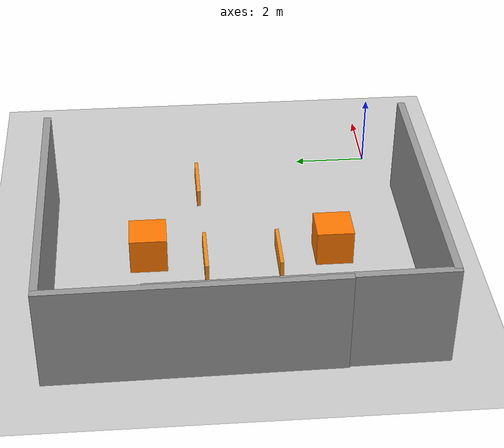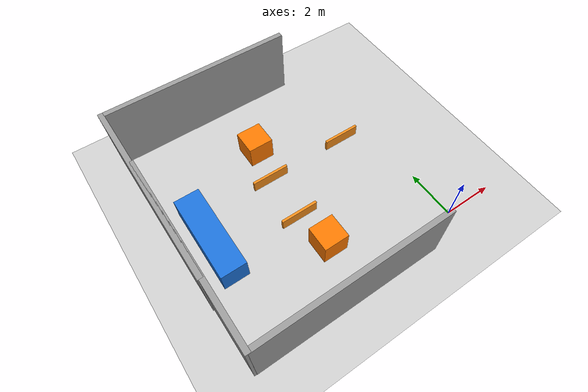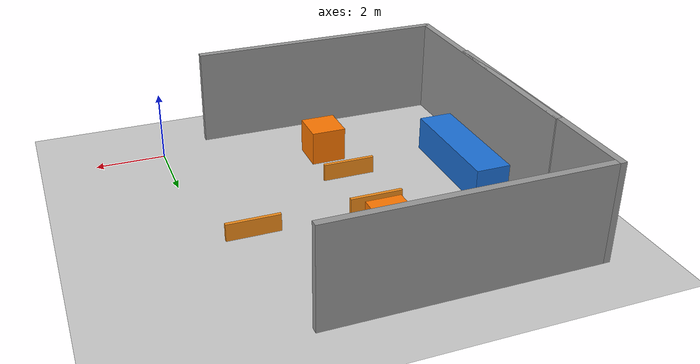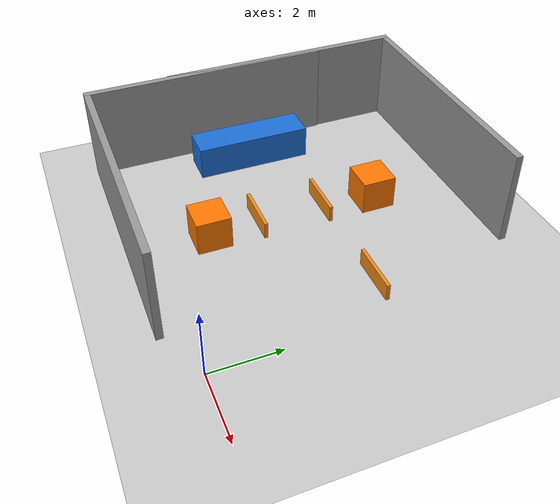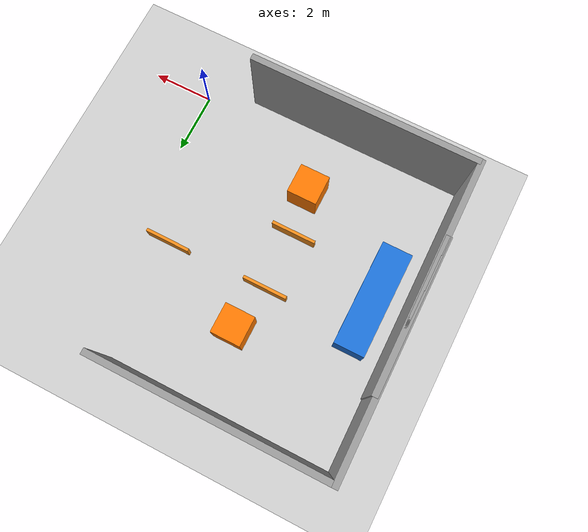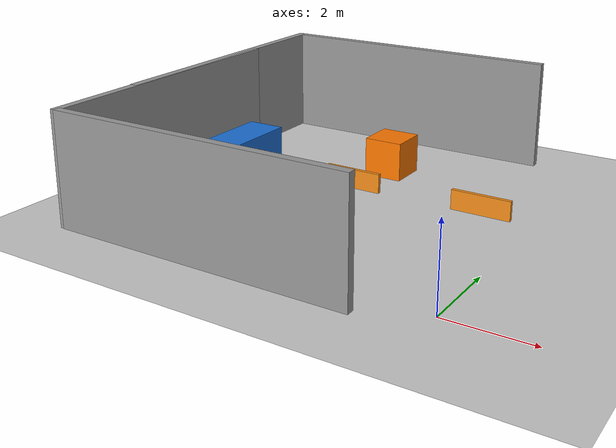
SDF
<sdf version="1.7">
 <world name="default">
  <model name="ground_plane">
   <static>1</static>
   <link name="link">
    <collision name="collision">
     <geometry><plane><normal>0 0 1</normal><size>100 100</size></plane></geometry>
     <surface><friction><ode><mu>100</mu><mu2>50</mu2></ode></friction></surface>
    </collision>
    <visual name="visual">
     <cast_shadows>0</cast_shadows>
     <geometry><plane><normal>0 0 1</normal><size>100 100</size></plane></geometry>
     <material>
      <script><uri>file://media/materials/scripts/gazebo.material</uri><name>Gazebo/Grey</name></script>
     </material>
    </visual>
   </link>
  </model>
  <model name="grey_wall">
   <static>1</static>
   <link name="link">
    <pose>0 0 1.4 0 -0 0</pose>
    <collision name="collision"><geometry><box><size>7.5 0.2 2.8</size></box></geometry></collision>
    <visual name="visual">
     <cast_shadows>0</cast_shadows>
     <geometry><box><size>7.5 0.2 2.8</size></box></geometry>
     <material>
      <script>
       <uri>model://grey_wall/materials/scripts</uri>
       <uri>model://grey_wall/materials/textures</uri>
       <name>vrc/grey_wall</name>
      </script>
     </material>
    </visual>
   </link>
   <pose>-5.22527 9.15073 0 0 -0 0</pose>
  </model>
  <model name="grey_wall_clone_0">
   <static>1</static>
   <link name="link">
    <pose>0 0 1.4 0 -0 0</pose>
    <collision name="collision"><geometry><box><size>7.5 0.2 2.8</size></box></geometry></collision>
    <visual name="visual">
     <cast_shadows>0</cast_shadows>
     <geometry><box><size>7.5 0.2 2.8</size></box></geometry>
     <material>
      <script>
       <uri>model://grey_wall/materials/scripts</uri>
       <uri>model://grey_wall/materials/textures</uri>
       <name>vrc/grey_wall</name>
      </script>
     </material>
    </visual>
   </link>
   <pose>-9.02983 5.49936 0 0 -0 1.58052</pose>
  </model>
  <model name="grey_wall_clone_0_clone">
   <static>1</static>
   <link name="link">
    <pose>0 0 1.4 0 -0 0</pose>
    <collision name="collision"><geometry><box><size>7.5 0.2 2.8</size></box></geometry></collision>
    <visual name="visual">
     <cast_shadows>0</cast_shadows>
     <geometry><box><size>7.5 0.2 2.8</size></box></geometry>
     <material>
      <script>
       <uri>model://grey_wall/materials/scripts</uri>
       <uri>model://grey_wall/materials/textures</uri>
       <name>vrc/grey_wall</name>
      </script>
     </material>
    </visual>
   </link>
   <pose>-8.96622 2.95449 0 0 -0 1.58052</pose>
  </model>
  <model name="grey_wall_clone_1">
   <static>1</static>
   <link name="link">
    <pose>0 0 1.4 0 -0 0</pose>
    <collision name="collision"><geometry><box><size>7.5 0.2 2.8</size></box></geometry></collision>
    <visual name="visual">
     <cast_shadows>0</cast_shadows>
     <geometry><box><size>7.5 0.2 2.8</size></box></geometry>
     <material>
      <script>
       <uri>model://grey_wall/materials/scripts</uri>
       <uri>model://grey_wall/materials/textures</uri>
       <name>vrc/grey_wall</name>
      </script>
     </material>
    </visual>
   </link>
   <pose>-5.18597 -0.706797 0 0 -0 0</pose>
  </model>
  <model name="unit_box_0">
   <link name="link">
    <inertial>
     <mass>1</mass>
     <inertia>
      <ixx>0.166667</ixx>
      <ixy>0</ixy>
      <ixz>0</ixz>
      <iyy>0.166667</iyy>
      <iyz>0</iyz>
      <izz>0.166667</izz>
     </inertia>
    </inertial>
    <visual name="visual">
     <geometry><box><size>1 1 1</size></box></geometry>
     <material>
      <script><name>Gazebo/Grey</name><uri>file://media/materials/scripts/gazebo.material</uri></script>
      <shader type="pixel"><normal_map>__default__</normal_map></shader>
      <ambient>1 0.471 0 1</ambient>
      <diffuse>0.7 0.7 0.7 1</diffuse>
      <specular>0.01 0.01 0.01 1</specular>
      <emissive>0 0 0 1</emissive>
     </material>
    </visual>
    <collision name="collision">
     <geometry><box><size>1 1 1</size></box></geometry>
     <surface>
      <friction>
       <ode><mu>1</mu><mu2>1</mu2><fdir1>0 0 0</fdir1><slip1>0</slip1><slip2>0</slip2></ode>
       <torsional>
        <coefficient>1</coefficient>
        <patch_radius>0</patch_radius>
        <surface_radius>0</surface_radius>
        <use_patch_radius>1</use_patch_radius>
        <ode><slip>0</slip></ode>
       </torsional>
      </friction>
      <bounce><restitution_coefficient>0</restitution_coefficient><threshold>1e+06</threshold></bounce>
      <contact>
       <collide_without_contact>0</collide_without_contact>
       <collide_without_contact_bitmask>1</collide_without_contact_bitmask>
       <collide_bitmask>1</collide_bitmask>
       <ode>
        <soft_cfm>0</soft_cfm>
        <soft_erp>0.2</soft_erp>
        <kp>1e+13</kp>
        <kd>1</kd>
        <max_vel>0.01</max_vel>
        <min_depth>0</min_depth>
       </ode>
       <bullet>
        <split_impulse>1</split_impulse>
        <split_impulse_penetration_threshold>-0.01</split_impulse_penetration_threshold>
        <soft_cfm>0</soft_cfm>
        <soft_erp>0.2</soft_erp>
        <kp>1e+13</kp>
        <kd>1</kd>
       </bullet>
      </contact>
     </surface>
    </collision>
   </link>
   <static>0</static>
   <pose>-4.48622 6.53364 0.499995 -1e-05 -0 -0</pose>
  </model>
  <model name="unit_box_0_clone_0">
   <link name="link">
    <inertial>
     <mass>1</mass>
     <inertia>
      <ixx>0.166667</ixx>
      <ixy>0</ixy>
      <ixz>0</ixz>
      <iyy>0.166667</iyy>
      <iyz>0</iyz>
      <izz>0.166667</izz>
     </inertia>
    </inertial>
    <visual name="visual">
     <geometry><box><size>1 1 1</size></box></geometry>
     <material>
      <script><name>Gazebo/Grey</name><uri>file://media/materials/scripts/gazebo.material</uri></script>
      <shader type="pixel"><normal_map>__default__</normal_map></shader>
      <ambient>1 0.471 0 1</ambient>
      <diffuse>0.7 0.7 0.7 1</diffuse>
      <specular>0.01 0.01 0.01 1</specular>
      <emissive>0 0 0 1</emissive>
     </material>
    </visual>
    <collision name="collision">
     <geometry><box><size>1 1 1</size></box></geometry>
     <surface>
      <friction>
       <ode><mu>1</mu><mu2>1</mu2><fdir1>0 0 0</fdir1><slip1>0</slip1><slip2>0</slip2></ode>
       <torsional>
        <coefficient>1</coefficient>
        <patch_radius>0</patch_radius>
        <surface_radius>0</surface_radius>
        <use_patch_radius>1</use_patch_radius>
        <ode><slip>0</slip></ode>
       </torsional>
      </friction>
      <bounce><restitution_coefficient>0</restitution_coefficient><threshold>1e+06</threshold></bounce>
      <contact>
       <collide_without_contact>0</collide_without_contact>
       <collide_without_contact_bitmask>1</collide_without_contact_bitmask>
       <collide_bitmask>1</collide_bitmask>
       <ode>
        <soft_cfm>0</soft_cfm>
        <soft_erp>0.2</soft_erp>
        <kp>1e+13</kp>
        <kd>1</kd>
        <max_vel>0.01</max_vel>
        <min_depth>0</min_depth>
       </ode>
       <bullet>
        <split_impulse>1</split_impulse>
        <split_impulse_penetration_threshold>-0.01</split_impulse_penetration_threshold>
        <soft_cfm>0</soft_cfm>
        <soft_erp>0.2</soft_erp>
        <kp>1e+13</kp>
        <kd>1</kd>
       </bullet>
      </contact>
     </surface>
    </collision>
   </link>
   <static>0</static>
   <pose>-4.51978 1.53973 0.499995 -1e-05 -0 -0</pose>
  </model>
  <model name="unit_box_clone">
   <link name="link">
    <inertial>
     <mass>1</mass>
     <inertia>
      <ixx>0.166667</ixx>
      <ixy>0</ixy>
      <ixz>0</ixz>
      <iyy>0.166667</iyy>
      <iyz>0</iyz>
      <izz>0.166667</izz>
     </inertia>
    </inertial>
    <visual name="visual">
     <geometry><box><size>1 3.48173 1</size></box></geometry>
     <material>
      <script><name>Gazebo/Grey</name><uri>file://media/materials/scripts/gazebo.material</uri></script>
      <shader type="pixel"><normal_map>__default__</normal_map></shader>
      <ambient>0.11 0.443 0.847 1</ambient>
      <diffuse>0.7 0.7 0.7 1</diffuse>
      <specular>0.01 0.01 0.01 1</specular>
      <emissive>0 0 0 1</emissive>
     </material>
    </visual>
    <collision name="collision">
     <geometry><box><size>1 3.48173 1</size></box></geometry>
     <surface>
      <friction>
       <ode><mu>1</mu><mu2>1</mu2><fdir1>0 0 0</fdir1><slip1>0</slip1><slip2>0</slip2></ode>
       <torsional>
        <coefficient>1</coefficient>
        <patch_radius>0</patch_radius>
        <surface_radius>0</surface_radius>
        <use_patch_radius>1</use_patch_radius>
        <ode><slip>0</slip></ode>
       </torsional>
      </friction>
      <bounce><restitution_coefficient>0</restitution_coefficient><threshold>1e+06</threshold></bounce>
      <contact>
       <collide_without_contact>0</collide_without_contact>
       <collide_without_contact_bitmask>1</collide_without_contact_bitmask>
       <collide_bitmask>1</collide_bitmask>
       <ode>
        <soft_cfm>0</soft_cfm>
        <soft_erp>0.2</soft_erp>
        <kp>1e+13</kp>
        <kd>1</kd>
        <max_vel>0.01</max_vel>
        <min_depth>0</min_depth>
       </ode>
       <bullet>
        <split_impulse>1</split_impulse>
        <split_impulse_penetration_threshold>-0.01</split_impulse_penetration_threshold>
        <soft_cfm>0</soft_cfm>
        <soft_erp>0.2</soft_erp>
        <kp>1e+13</kp>
        <kd>1</kd>
       </bullet>
      </contact>
     </surface>
    </collision>
   </link>
   <static>0</static>
   <pose>-7.91007 3.91519 0.499622 -0.000217 0 0</pose>
  </model>
  <model name="divider">
   <link name="link">
    <inertial>
     <mass>1</mass>
     <inertia>
      <ixx>0.166667</ixx>
      <ixy>0</ixy>
      <ixz>0</ixz>
      <iyy>0.166667</iyy>
      <iyz>0</iyz>
      <izz>0.166667</izz>
     </inertia>
    </inertial>
    <visual name="visual">
     <geometry><box><size>1.5 0.1 0.5</size></box></geometry>
     <material>
      <script><name>Gazebo/Orange</name><uri>file://media/materials/scripts/gazebo.material</uri></script>
      <shader type="pixel"><normal_map>__default__</normal_map></shader>
      <ambient>0.71 0.514 0.353 1</ambient>
      <diffuse>0.7 0.7 0.7 1</diffuse>
      <specular>0.01 0.01 0.01 1</specular>
      <emissive>0 0 0 1</emissive>
     </material>
    </visual>
    <collision name="collision">
     <geometry><box><size>1.5 0.1 0.5</size></box></geometry>
     <surface>
      <friction>
       <ode><mu>1</mu><mu2>1</mu2><fdir1>0 0 0</fdir1><slip1>0</slip1><slip2>0</slip2></ode>
       <torsional>
        <coefficient>1</coefficient>
        <patch_radius>0</patch_radius>
        <surface_radius>0</surface_radius>
        <use_patch_radius>1</use_patch_radius>
        <ode><slip>0</slip></ode>
       </torsional>
      </friction>
      <bounce><restitution_coefficient>0</restitution_coefficient><threshold>1e+06</threshold></bounce>
      <contact>
       <collide_without_contact>0</collide_without_contact>
       <collide_without_contact_bitmask>1</collide_without_contact_bitmask>
       <collide_bitmask>1</collide_bitmask>
       <ode>
        <soft_cfm>0</soft_cfm>
        <soft_erp>0.2</soft_erp>
        <kp>1e+13</kp>
        <kd>1</kd>
        <max_vel>0.01</max_vel>
        <min_depth>0</min_depth>
       </ode>
       <bullet>
        <split_impulse>1</split_impulse>
        <split_impulse_penetration_threshold>-0.01</split_impulse_penetration_threshold>
        <soft_cfm>0</soft_cfm>
        <soft_erp>0.2</soft_erp>
        <kp>1e+13</kp>
        <kd>1</kd>
       </bullet>
      </contact>
     </surface>
    </collision>
   </link>
   <static>0</static>
   <pose>-4.74765 3.01833 0.249992 0 -1.1e-05 -0.000674</pose>
  </model>
  <model name="divider_0">
   <link name="link">
    <inertial>
     <mass>1</mass>
     <inertia>
      <ixx>0.166667</ixx>
      <ixy>0</ixy>
      <ixz>0</ixz>
      <iyy>0.166667</iyy>
      <iyz>0</iyz>
      <izz>0.166667</izz>
     </inertia>
    </inertial>
    <visual name="visual">
     <geometry><box><size>1.5 0.1 0.5</size></box></geometry>
     <material>
      <script><name>Gazebo/Orange</name><uri>file://media/materials/scripts/gazebo.material</uri></script>
      <shader type="pixel"><normal_map>__default__</normal_map></shader>
      <ambient>0.71 0.514 0.353 1</ambient>
      <diffuse>0.7 0.7 0.7 1</diffuse>
      <specular>0.01 0.01 0.01 1</specular>
      <emissive>0 0 0 1</emissive>
     </material>
    </visual>
    <collision name="collision">
     <geometry><box><size>1.5 0.1 0.5</size></box></geometry>
     <surface>
      <friction>
       <ode><mu>1</mu><mu2>1</mu2><fdir1>0 0 0</fdir1><slip1>0</slip1><slip2>0</slip2></ode>
       <torsional>
        <coefficient>1</coefficient>
        <patch_radius>0</patch_radius>
        <surface_radius>0</surface_radius>
        <use_patch_radius>1</use_patch_radius>
        <ode><slip>0</slip></ode>
       </torsional>
      </friction>
      <bounce><restitution_coefficient>0</restitution_coefficient><threshold>1e+06</threshold></bounce>
      <contact>
       <collide_without_contact>0</collide_without_contact>
       <collide_without_contact_bitmask>1</collide_without_contact_bitmask>
       <collide_bitmask>1</collide_bitmask>
       <ode>
        <soft_cfm>0</soft_cfm>
        <soft_erp>0.2</soft_erp>
        <kp>1e+13</kp>
        <kd>1</kd>
        <max_vel>0.01</max_vel>
        <min_depth>0</min_depth>
       </ode>
       <bullet>
        <split_impulse>1</split_impulse>
        <split_impulse_penetration_threshold>-0.01</split_impulse_penetration_threshold>
        <soft_cfm>0</soft_cfm>
        <soft_erp>0.2</soft_erp>
        <kp>1e+13</kp>
        <kd>1</kd>
       </bullet>
      </contact>
     </surface>
    </collision>
   </link>
   <static>0</static>
   <pose>-4.75094 5.00942 0.249992 0 -1.1e-05 -0.000584</pose>
  </model>
  <model name="divider_1">
   <link name="link">
    <inertial>
     <mass>1</mass>
     <inertia>
      <ixx>0.166667</ixx>
      <ixy>0</ixy>
      <ixz>0</ixz>
      <iyy>0.166667</iyy>
      <iyz>0</iyz>
      <izz>0.166667</izz>
     </inertia>
    </inertial>
    <visual name="visual">
     <geometry><box><size>1.5 0.1 0.5</size></box></geometry>
     <material>
      <script><name>Gazebo/Orange</name><uri>file://media/materials/scripts/gazebo.material</uri></script>
      <shader type="pixel"><normal_map>__default__</normal_map></shader>
      <ambient>0.71 0.514 0.353 1</ambient>
      <diffuse>0.7 0.7 0.7 1</diffuse>
      <specular>0.01 0.01 0.01 1</specular>
      <emissive>0 0 0 1</emissive>
     </material>
    </visual>
    <collision name="collision">
     <geometry><box><size>1.5 0.1 0.5</size></box></geometry>
     <surface>
      <friction>
       <ode><mu>1</mu><mu2>1</mu2><fdir1>0 0 0</fdir1><slip1>0</slip1><slip2>0</slip2></ode>
       <torsional>
        <coefficient>1</coefficient>
        <patch_radius>0</patch_radius>
        <surface_radius>0</surface_radius>
        <use_patch_radius>1</use_patch_radius>
        <ode><slip>0</slip></ode>
       </torsional>
      </friction>
      <bounce><restitution_coefficient>0</restitution_coefficient><threshold>1e+06</threshold></bounce>
      <contact>
       <collide_without_contact>0</collide_without_contact>
       <collide_without_contact_bitmask>1</collide_without_contact_bitmask>
       <collide_bitmask>1</collide_bitmask>
       <ode>
        <soft_cfm>0</soft_cfm>
        <soft_erp>0.2</soft_erp>
        <kp>1e+13</kp>
        <kd>1</kd>
        <max_vel>0.01</max_vel>
        <min_depth>0</min_depth>
       </ode>
       <bullet>
        <split_impulse>1</split_impulse>
        <split_impulse_penetration_threshold>-0.01</split_impulse_penetration_threshold>
        <soft_cfm>0</soft_cfm>
        <soft_erp>0.2</soft_erp>
        <kp>1e+13</kp>
        <kd>1</kd>
       </bullet>
      </contact>
     </surface>
    </collision>
   </link>
   <static>0</static>
   <pose>-1.30898 5.04675 0.249992 -0 -1.1e-05 -0.002348</pose>
  </model>
 </world>
</sdf>
